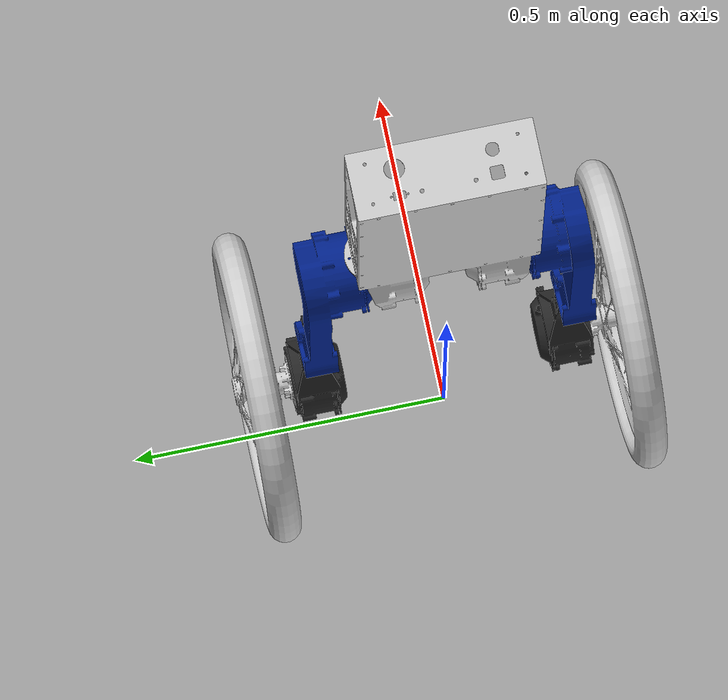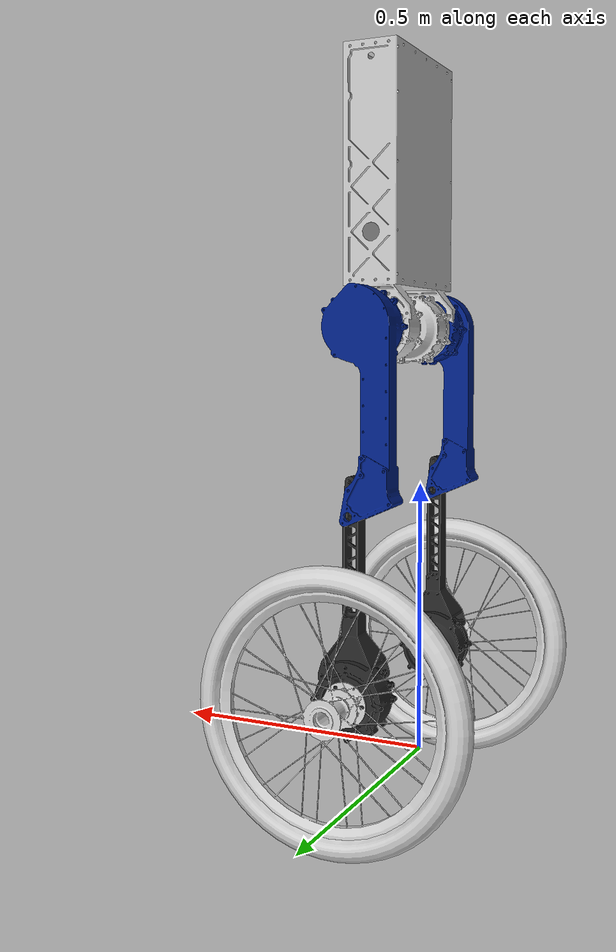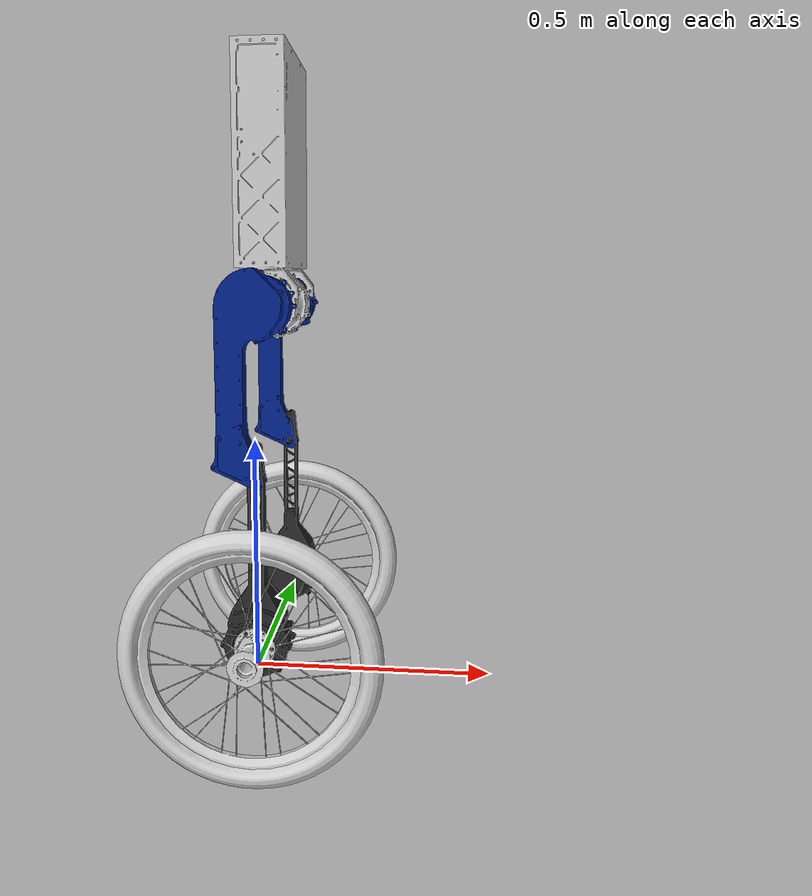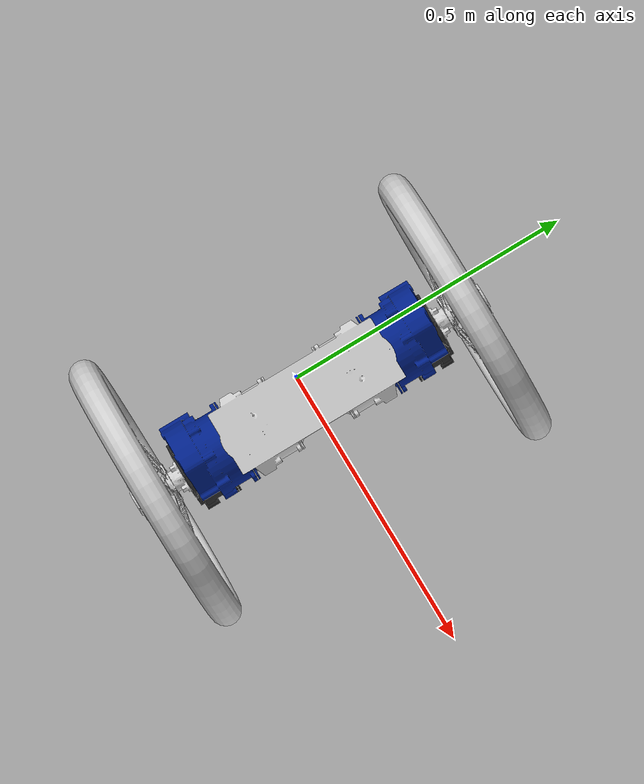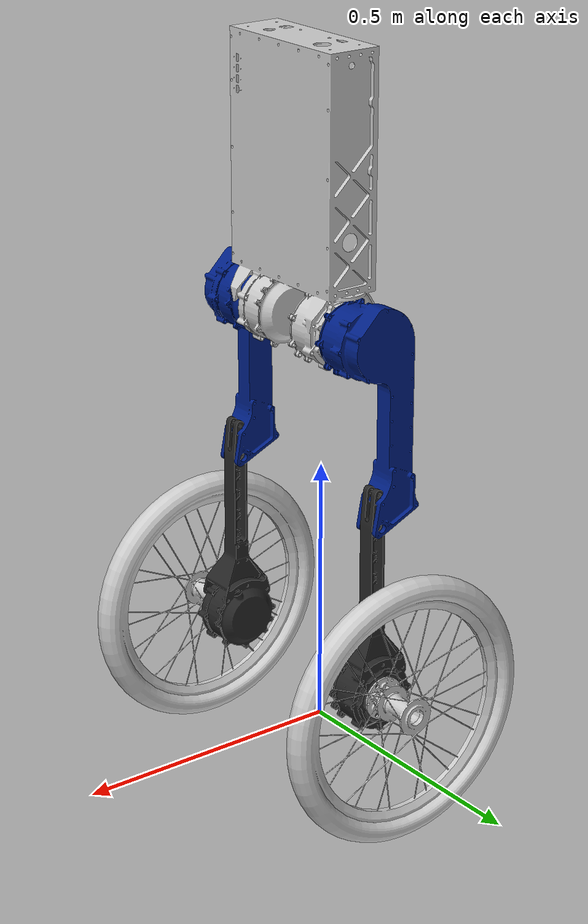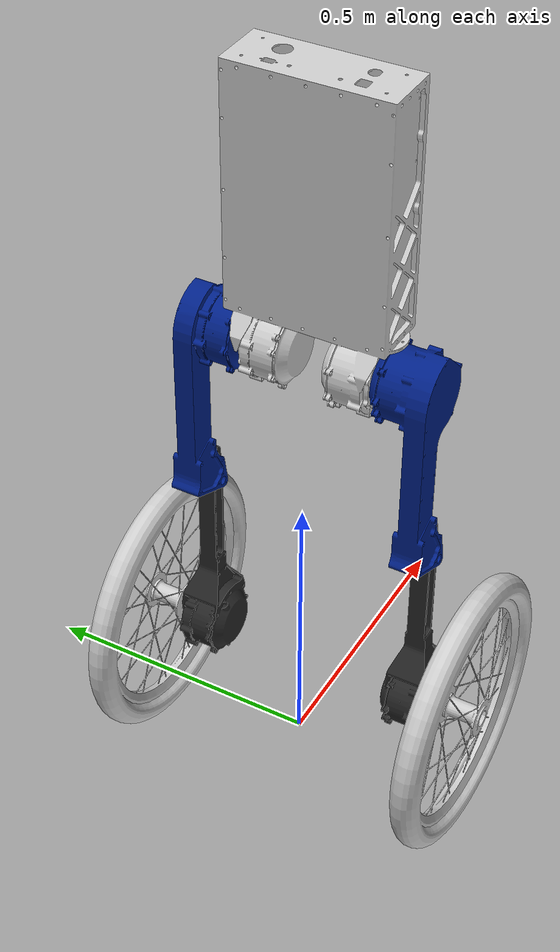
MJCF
<mujoco model="raiway">
  <compiler angle="radian" meshdir="meshes" inertiafromgeom="false" autolimits="true" />
  <default>
    <geom friction="0.8 0.005 0.0001" condim="3" />
    <default class="visual">
      <geom contype="0" conaffinity="0" group="1" density="0" />
    </default>
    <default class="collision">
      <geom contype="2" conaffinity="1" group="3" rgba="0.9 0.3 0.3 0.4" />
    </default>
  </default>
  <asset>
    <mesh name="raiway_TORSO_new" file="raiway_TORSO_new.STL" />
    <mesh name="raiway_L_THIGH" file="raiway_L_THIGH.STL" />
    <mesh name="raiway_L_SHANK" file="raiway_L_SHANK.STL" />
    <mesh name="raiway_L_WHEEL" file="raiway_L_WHEEL.STL" />
    <mesh name="raiway_R_THIGH" file="raiway_R_THIGH.STL" />
    <mesh name="raiway_R_SHANK" file="raiway_R_SHANK.STL" />
    <mesh name="raiway_R_WHEEL" file="raiway_R_WHEEL.STL" />
  </asset>
  <worldbody>
    <body name="Segway_TORSO" pos="0 0 0.9">
      <freejoint name="root" />
      <inertial pos="0.04171 -0.00167 0.05873" mass="14.1468" fullinertia="0.461961441 0.405576164 0.139419153 -0.0015297471 0.030401978 0.00765353691" />
      <geom class="visual" type="mesh" mesh="raiway_TORSO_new" rgba="0.8 0.8 0.8 1.0" pos="0 0 0" />
      <geom class="collision" pos="0.043 0 0.165677" type="box" size="0.0505 0.138 0.2075" />
      <geom class="collision" pos="0.043 0.075 -0.11413" quat="0.707106781 0.707106781 0 0" type="cylinder" size="0.0635 0.035" />
      <geom class="collision" pos="0.043 -0.075 -0.11413" quat="0.707106781 0.707106781 0 0" type="cylinder" size="0.0635 0.035" />
      <body name="Segway_L_THIGH" pos="0.0435 0.20098 -0.11413">
        <joint name="L_HFE" axis="0 1 0" range="-3.14 3.14" armature="0.022811353" />
        <inertial pos="-0.00937 -0.02917 -0.04221" mass="3.2778" fullinertia="0.0426089298 0.0416249027 0.0101110829 5.114275e-05 0.00537573634 0.00032962679" />
        <geom class="visual" type="mesh" mesh="raiway_L_THIGH" rgba="0.0 0.125 0.53 1.0" pos="0 0 0" />
        <geom class="collision" pos="-0.04575 0 -0.13" type="box" size="0.02575 0.01723 0.115" />
        <geom class="collision" pos="0 -0.035 0" quat="0.707106781 0.707106781 0 0" type="cylinder" size="0.0635 0.05" />
        <body name="Segway_L_SHANK" pos="0 0 -0.32">
          <joint name="L_KFE" axis="0 1 0" range="-2.6843164 -0.4572763" armature="0.022811353" />
          <inertial pos="2e-05 0.00135 -0.28255" mass="2.4835" fullinertia="0.221032822 0.22272559 0.00325186068 3.49733e-06 -3.96431e-06 -0.00111303858" />
          <geom class="visual" type="mesh" mesh="raiway_L_SHANK" rgba="0.15 0.15 0.15 1.0" pos="0 0 0" />
          <geom class="collision" pos="0 0 -0.14" quat="0.707106781 0 0.707106781 0" type="box" size="0.2075 0.01593 0.0145" />
          <geom class="collision" pos="0 0 -0.32" quat="0.707106781 0.707106781 0 0" type="cylinder" size="0.0635 0.035" />
          <body name="Segway_L_WHEEL" pos="0 0 -0.32">
            <joint name="L_WHEEL" axis="0 1 0" armature="0.022811353" />
            <inertial pos="0 0.08642 0" mass="1.46382" fullinertia="0.0510010158 0.102 0.0510009842 -1.066e-08 -1.083e-08 -3.194e-08" />
            <geom class="visual" type="mesh" mesh="raiway_L_WHEEL" rgba="0.8 0.8 0.8 1.0" pos="0 0 0" />
            <geom class="collision" pos="0 0.09745 0" quat="0.707106781 0.707106781 0 0" type="cylinder" size="0.254 0.026" name="Segway_L_WHEEL_tire" />
          </body>
        </body>
      </body>
      <body name="Segway_R_THIGH" pos="0.0435 -0.20098 -0.11413">
        <joint name="R_HFE" axis="0 1 0" range="-3.14 3.14" armature="0.022811353" />
        <inertial pos="-0.00937 0.02917 -0.04221" mass="3.2778" fullinertia="0.0426089298 0.0416249027 0.0101110829 -5.114275e-05 0.00537573634 -0.00032962679" />
        <geom class="visual" type="mesh" mesh="raiway_R_THIGH" rgba="0.0 0.125 0.53 1.0" pos="0 0 0" />
        <geom class="collision" pos="-0.04575 0 -0.13" type="box" size="0.02575 0.01723 0.115" />
        <geom class="collision" pos="0 0.035 0" quat="0.707106781 0.707106781 0 0" type="cylinder" size="0.0635 0.05" />
        <body name="Segway_R_SHANK" pos="0 0 -0.32">
          <joint name="R_KFE" axis="0 1 0" range="-2.6843164 -0.4572763" armature="0.022811353" />
          <inertial pos="2e-05 -0.00135 -0.28255" mass="2.4835" fullinertia="0.221032822 0.22272559 0.00325186068 -3.49733e-06 -3.96431e-06 0.00111303858" />
          <geom class="visual" type="mesh" mesh="raiway_R_SHANK" rgba="0.15 0.15 0.15 1.0" pos="0 0 0" />
          <geom class="collision" pos="0 0 -0.14" quat="0.707106781 0 0.707106781 0" type="box" size="0.2075 0.01593 0.0145" />
          <geom class="collision" pos="0 0 -0.32" quat="0.707106781 0.707106781 0 0" type="cylinder" size="0.0635 0.035" />
          <body name="Segway_R_WHEEL" pos="0 0 -0.32">
            <joint name="R_WHEEL" axis="0 1 0" armature="0.022811353" />
            <inertial pos="0 -0.08642 0" mass="1.46382" fullinertia="0.0510010158 0.102 0.0510009842 1.066e-08 -1.083e-08 3.194e-08" />
            <geom class="visual" type="mesh" mesh="raiway_R_WHEEL" rgba="0.8 0.8 0.8 1.0" pos="0 0 0" />
            <geom class="collision" pos="0 -0.09745 0" quat="0.707106781 0.707106781 0 0" type="cylinder" size="0.254 0.026" name="Segway_R_WHEEL_tire" />
          </body>
        </body>
      </body>
    </body>
  </worldbody>
</mujoco>
